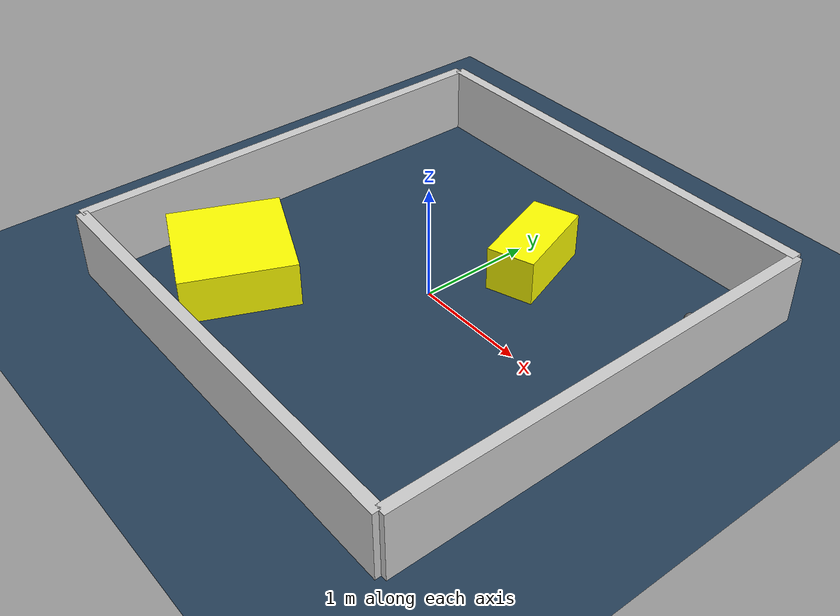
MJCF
<?xml version="1.0" ?>
<mujoco model="generated_environment">
  <option timestep="0.01" integrator="RK4" cone="elliptic"/>
  <default>
    <geom density="1"/>
  </default>
  <asset>
    <texture builtin="gradient" height="3072" rgb1="0.3 0.5 0.7" rgb2="0 0 0" type="skybox" width="512"/>
    <texture builtin="checker" height="300" mark="edge" markrgb="0.8 0.8 0.8" name="groundplane" rgb1="0.2 0.3 0.4" rgb2="0.1 0.2 0.3" type="2d" width="300"/>
    <material name="groundplane" reflectance="0.2" texrepeat="5 5" texture="groundplane" texuniform="true"/>
    <material name="robot" rgba="0.0 1.0 0.0 1"/>
  </asset>
  <worldbody>
    <light dir="0 0 -1" directional="true" pos="0 0 1.5"/>
    <geom condim="4" friction="1.0 0.005 0.001" material="groundplane" name="floor" size="0 0 0.05" type="plane"/>
    <body name="walls">
      <geom name="wall_1" condim="4" pos="-2.0 0.0 0.3" rgba="0.800000011920929 0.800000011920929 0.800000011920929 1.0" size="0.05 2.0 0.3" type="box"/>
      <geom name="wall_2" condim="4" pos="2.0 0.0 0.3" rgba="0.800000011920929 0.800000011920929 0.800000011920929 1.0" size="0.05 2.0 0.3" type="box"/>
      <geom name="wall_3" condim="4" pos="0.0 -2.0 0.3" rgba="0.800000011920929 0.800000011920929 0.800000011920929 1.0" size="2.0 0.05 0.3" type="box"/>
      <geom name="wall_4" condim="4" pos="0.0 2.0 0.3" rgba="0.800000011920929 0.800000011920929 0.800000011920929 1.0" size="2.0 0.05 0.3" type="box"/>
    </body>
    <body name="robot">
      <joint name="joint_x" type="slide" pos="0 0 0" axis="1 0 0"/>
      <joint name="joint_y" type="slide" pos="0 0 0" axis="0 1 0"/>
      <geom name="robot" type="sphere" pos="1.7001038512840045 1.1974165710998657 0.2" size="0.05" mass="5." friction="1.0 0.005 0.0001" condim="4"/>
      <site name="sensor_ball"/>
    </body>
    <body name="obstacle_1_movable">
      <geom name="obstacle_1_movable" condim="4" pos="-1.1891925036223583 -1.1194908577137495 0.2" euler="0 0 246.31707773976848" friction="1.0 0.005 0.001" rgba="1 1 0 1" size="0.4804628541316563 0.4985453326313914 0.2" type="box" mass="0.1"/>
      <joint type="free"/>
    </body>
    <body name="obstacle_2_movable">
      <geom name="obstacle_2_movable" condim="4" pos="0.29173788319371696 0.8671590658537154 0.2" euler="0 0 109.1889067119333" friction="1.0 0.005 0.001" rgba="1 1 0 1" size="0.40736304433332404 0.20918953565669926 0.2" type="box" mass="0.1"/>
      <joint type="free"/>
    </body>
  </worldbody>
  <actuator>
    <motor name="actuator_x" joint="joint_x" gear="1" ctrlrange="-1 1"/>
    <motor name="actuator_y" joint="joint_y" gear="1" ctrlrange="-1 1"/>
  </actuator>
</mujoco>
